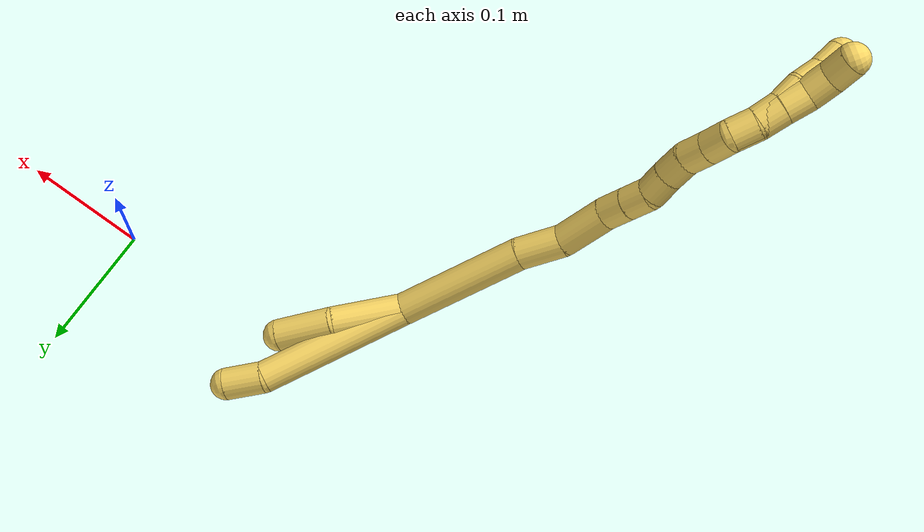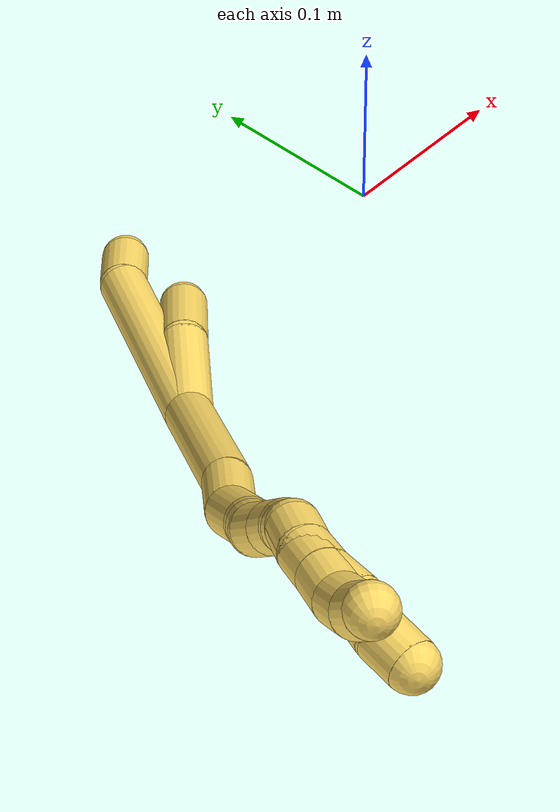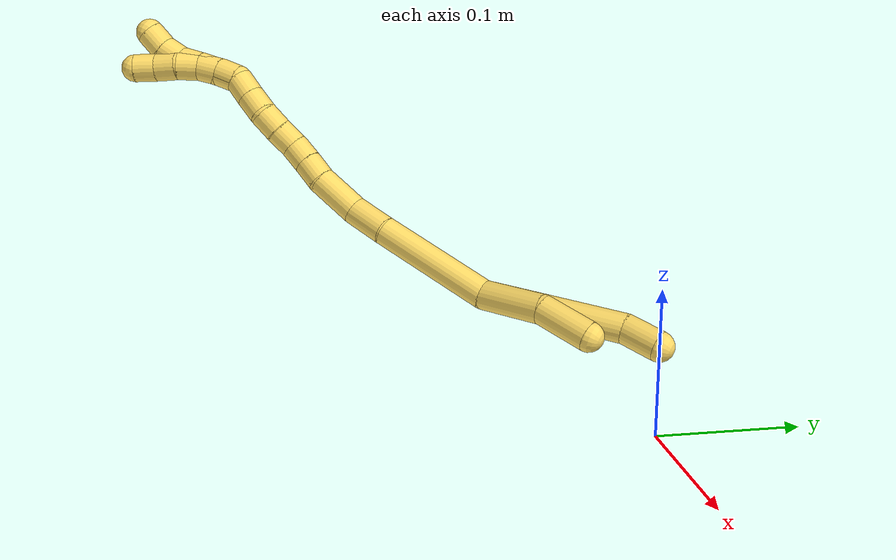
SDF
<sdf version="1.7">
 <world name="default">
  <model name="5">
   <static>0</static>
   <link name="5">
    <collision name="collision-cylinder-e_1_2_8">
     <pose>0.008209 -0.009722 -0.058133 2.97588 0.138385 1.39087</pose>
     <geometry><cylinder><radius>0.0125</radius><length>0.119018</length></cylinder></geometry>
     <surface>
      <friction><ode><mu>1.16</mu><mu2>1.16</mu2><slip1>0</slip1><slip2>0</slip2></ode></friction>
      <contact><ode><kp>1e+06</kp><kd>1</kd><max_vel>0</max_vel><min_depth>0.001</min_depth></ode></contact>
     </surface>
    </collision>
    <visual name="visual-cylinder-e_1_2_8">
     <pose>0.008209 -0.009722 -0.058133 2.97588 0.138385 1.39087</pose>
     <geometry><cylinder><radius>0.0125</radius><length>0.119018</length></cylinder></geometry>
     <material><ambient>1 0.858824 0.4 1</ambient></material>
    </visual>
    <collision name="collision-cylinder-e_2_8_6">
     <pose>0.013962 -0.019486 -0.13156 3.13894 -0.159186 -3.10832</pose>
     <geometry><cylinder><radius>0.0125</radius><length>0.030982</length></cylinder></geometry>
     <surface>
      <friction><ode><mu>1.16</mu><mu2>1.16</mu2><slip1>0</slip1><slip2>0</slip2></ode></friction>
      <contact><ode><kp>1e+06</kp><kd>1</kd><max_vel>0</max_vel><min_depth>0.001</min_depth></ode></contact>
     </surface>
    </collision>
    <visual name="visual-cylinder-e_2_8_6">
     <pose>0.013962 -0.019486 -0.13156 3.13894 -0.159186 -3.10832</pose>
     <geometry><cylinder><radius>0.0125</radius><length>0.030982</length></cylinder></geometry>
     <material><ambient>1 0.858824 0.4 1</ambient></material>
    </visual>
    <collision name="collision-cylinder-e_1_2_9">
     <pose>-0.003303 -0.006274 -0.026842 2.91197 -0.119266 -0.955454</pose>
     <geometry><cylinder><radius>0.0125</radius><length>0.055525</length></cylinder></geometry>
     <surface>
      <friction><ode><mu>1.16</mu><mu2>1.16</mu2><slip1>0</slip1><slip2>0</slip2></ode></friction>
      <contact><ode><kp>1e+06</kp><kd>1</kd><max_vel>0</max_vel><min_depth>0.001</min_depth></ode></contact>
     </surface>
    </collision>
    <visual name="visual-cylinder-e_1_2_9">
     <pose>-0.003303 -0.006274 -0.026842 2.91197 -0.119266 -0.955454</pose>
     <geometry><cylinder><radius>0.0125</radius><length>0.055525</length></cylinder></geometry>
     <material><ambient>1 0.858824 0.4 1</ambient></material>
    </visual>
    <collision name="collision-cylinder-e_2_9_5">
     <pose>-0.009376 -0.0115 -0.075723 -3.09404 -0.124885 2.41476</pose>
     <geometry><cylinder><radius>0.0125</radius><length>0.044475</length></cylinder></geometry>
     <surface>
      <friction><ode><mu>1.16</mu><mu2>1.16</mu2><slip1>0</slip1><slip2>0</slip2></ode></friction>
      <contact><ode><kp>1e+06</kp><kd>1</kd><max_vel>0</max_vel><min_depth>0.001</min_depth></ode></contact>
     </surface>
    </collision>
    <visual name="visual-cylinder-e_2_9_5">
     <pose>-0.009376 -0.0115 -0.075723 -3.09404 -0.124885 2.41476</pose>
     <geometry><cylinder><radius>0.0125</radius><length>0.044475</length></cylinder></geometry>
     <material><ambient>1 0.858824 0.4 1</ambient></material>
    </visual>
    <collision name="collision-cylinder-e_1_2_10">
     <pose>-0.003356 -0.008239 0.050673 0.161173 -0.065287 -0.005275</pose>
     <geometry><cylinder><radius>0.0125</radius><length>0.102895</length></cylinder></geometry>
     <surface>
      <friction><ode><mu>1.16</mu><mu2>1.16</mu2><slip1>0</slip1><slip2>0</slip2></ode></friction>
      <contact><ode><kp>1e+06</kp><kd>1</kd><max_vel>0</max_vel><min_depth>0.001</min_depth></ode></contact>
     </surface>
    </collision>
    <visual name="visual-cylinder-e_1_2_10">
     <pose>-0.003356 -0.008239 0.050673 0.161173 -0.065287 -0.005275</pose>
     <geometry><cylinder><radius>0.0125</radius><length>0.102895</length></cylinder></geometry>
     <material><ambient>1 0.858824 0.4 1</ambient></material>
    </visual>
    <collision name="collision-cylinder-e_2_10_11">
     <pose>-0.005289 -0.018675 0.118853 0.124876 0.080503 0.005036</pose>
     <geometry><cylinder><radius>0.0125</radius><length>0.035405</length></cylinder></geometry>
     <surface>
      <friction><ode><mu>1.16</mu><mu2>1.16</mu2><slip1>0</slip1><slip2>0</slip2></ode></friction>
      <contact><ode><kp>1e+06</kp><kd>1</kd><max_vel>0</max_vel><min_depth>0.001</min_depth></ode></contact>
     </surface>
    </collision>
    <visual name="visual-cylinder-e_2_10_11">
     <pose>-0.005289 -0.018675 0.118853 0.124876 0.080503 0.005036</pose>
     <geometry><cylinder><radius>0.0125</radius><length>0.035405</length></cylinder></geometry>
     <material><ambient>1 0.858824 0.4 1</ambient></material>
    </visual>
    <collision name="collision-cylinder-e_3_11_12">
     <pose>-0.006549 -0.028 0.155203 0.361653 -0.132433 -0.024246</pose>
     <geometry><cylinder><radius>0.0125</radius><length>0.040647</length></cylinder></geometry>
     <surface>
      <friction><ode><mu>1.16</mu><mu2>1.16</mu2><slip1>0</slip1><slip2>0</slip2></ode></friction>
      <contact><ode><kp>1e+06</kp><kd>1</kd><max_vel>0</max_vel><min_depth>0.001</min_depth></ode></contact>
     </surface>
    </collision>
    <visual name="visual-cylinder-e_3_11_12">
     <pose>-0.006549 -0.028 0.155203 0.361653 -0.132433 -0.024246</pose>
     <geometry><cylinder><radius>0.0125</radius><length>0.040647</length></cylinder></geometry>
     <material><ambient>1 0.858824 0.4 1</ambient></material>
    </visual>
    <collision name="collision-cylinder-e_4_12_13">
     <pose>-0.008989 -0.039872 0.183285 0.474305 0.023474 0.005674</pose>
     <geometry><cylinder><radius>0.0125</radius><length>0.020777</length></cylinder></geometry>
     <surface>
      <friction><ode><mu>1.16</mu><mu2>1.16</mu2><slip1>0</slip1><slip2>0</slip2></ode></friction>
      <contact><ode><kp>1e+06</kp><kd>1</kd><max_vel>0</max_vel><min_depth>0.001</min_depth></ode></contact>
     </surface>
    </collision>
    <visual name="visual-cylinder-e_4_12_13">
     <pose>-0.008989 -0.039872 0.183285 0.474305 0.023474 0.005674</pose>
     <geometry><cylinder><radius>0.0125</radius><length>0.020777</length></cylinder></geometry>
     <material><ambient>1 0.858824 0.4 1</ambient></material>
    </visual>
    <collision name="collision-cylinder-e_5_13_14">
     <pose>-0.008531 -0.048976 0.201637 0.446353 0.021261 0.004826</pose>
     <geometry><cylinder><radius>0.0125</radius><length>0.02021</length></cylinder></geometry>
     <surface>
      <friction><ode><mu>1.16</mu><mu2>1.16</mu2><slip1>0</slip1><slip2>0</slip2></ode></friction>
      <contact><ode><kp>1e+06</kp><kd>1</kd><max_vel>0</max_vel><min_depth>0.001</min_depth></ode></contact>
     </surface>
    </collision>
    <visual name="visual-cylinder-e_5_13_14">
     <pose>-0.008531 -0.048976 0.201637 0.446353 0.021261 0.004826</pose>
     <geometry><cylinder><radius>0.0125</radius><length>0.02021</length></cylinder></geometry>
     <material><ambient>1 0.858824 0.4 1</ambient></material>
    </visual>
    <collision name="collision-cylinder-e_6_14_15">
     <pose>-0.011453 -0.057972 0.21905 0.50925 -0.318823 -0.083643</pose>
     <geometry><cylinder><radius>0.0125</radius><length>0.02002</length></cylinder></geometry>
     <surface>
      <friction><ode><mu>1.16</mu><mu2>1.16</mu2><slip1>0</slip1><slip2>0</slip2></ode></friction>
      <contact><ode><kp>1e+06</kp><kd>1</kd><max_vel>0</max_vel><min_depth>0.001</min_depth></ode></contact>
     </surface>
    </collision>
    <visual name="visual-cylinder-e_6_14_15">
     <pose>-0.011453 -0.057972 0.21905 0.50925 -0.318823 -0.083643</pose>
     <geometry><cylinder><radius>0.0125</radius><length>0.02002</length></cylinder></geometry>
     <material><ambient>1 0.858824 0.4 1</ambient></material>
    </visual>
    <collision name="collision-cylinder-e_7_15_16">
     <pose>-0.017028 -0.067526 0.235734 0.530619 -0.245627 -0.067053</pose>
     <geometry><cylinder><radius>0.0125</radius><length>0.020044</length></cylinder></geometry>
     <surface>
      <friction><ode><mu>1.16</mu><mu2>1.16</mu2><slip1>0</slip1><slip2>0</slip2></ode></friction>
      <contact><ode><kp>1e+06</kp><kd>1</kd><max_vel>0</max_vel><min_depth>0.001</min_depth></ode></contact>
     </surface>
    </collision>
    <visual name="visual-cylinder-e_7_15_16">
     <pose>-0.017028 -0.067526 0.235734 0.530619 -0.245627 -0.067053</pose>
     <geometry><cylinder><radius>0.0125</radius><length>0.020044</length></cylinder></geometry>
     <material><ambient>1 0.858824 0.4 1</ambient></material>
    </visual>
    <collision name="collision-cylinder-e_8_16_17">
     <pose>-0.019285 -0.077175 0.252928 0.492725 0.017979 0.004521</pose>
     <geometry><cylinder><radius>0.0125</radius><length>0.020001</length></cylinder></geometry>
     <surface>
      <friction><ode><mu>1.16</mu><mu2>1.16</mu2><slip1>0</slip1><slip2>0</slip2></ode></friction>
      <contact><ode><kp>1e+06</kp><kd>1</kd><max_vel>0</max_vel><min_depth>0.001</min_depth></ode></contact>
     </surface>
    </collision>
    <visual name="visual-cylinder-e_8_16_17">
     <pose>-0.019285 -0.077175 0.252928 0.492725 0.017979 0.004521</pose>
     <geometry><cylinder><radius>0.0125</radius><length>0.020001</length></cylinder></geometry>
     <material><ambient>1 0.858824 0.4 1</ambient></material>
    </visual>
    <collision name="collision-cylinder-e_9_17_1">
     <pose>-0.019198 -0.087065 0.270302 0.542215 -0.009286 -0.002581</pose>
     <geometry><cylinder><radius>0.0125</radius><length>0.02</length></cylinder></geometry>
     <surface>
      <friction><ode><mu>1.16</mu><mu2>1.16</mu2><slip1>0</slip1><slip2>0</slip2></ode></friction>
      <contact><ode><kp>1e+06</kp><kd>1</kd><max_vel>0</max_vel><min_depth>0.001</min_depth></ode></contact>
     </surface>
    </collision>
    <visual name="visual-cylinder-e_9_17_1">
     <pose>-0.019198 -0.087065 0.270302 0.542215 -0.009286 -0.002581</pose>
     <geometry><cylinder><radius>0.0125</radius><length>0.02</length></cylinder></geometry>
     <material><ambient>1 0.858824 0.4 1</ambient></material>
    </visual>
    <collision name="collision-cylinder-e_1_1_18">
     <pose>-0.020175 -0.092286 0.288828 0.006093 -0.088494 -0.00027</pose>
     <geometry><cylinder><radius>0.0125</radius><length>0.02</length></cylinder></geometry>
     <surface>
      <friction><ode><mu>1.16</mu><mu2>1.16</mu2><slip1>0</slip1><slip2>0</slip2></ode></friction>
      <contact><ode><kp>1e+06</kp><kd>1</kd><max_vel>0</max_vel><min_depth>0.001</min_depth></ode></contact>
     </surface>
    </collision>
    <visual name="visual-cylinder-e_1_1_18">
     <pose>-0.020175 -0.092286 0.288828 0.006093 -0.088494 -0.00027</pose>
     <geometry><cylinder><radius>0.0125</radius><length>0.02</length></cylinder></geometry>
     <material><ambient>1 0.858824 0.4 1</ambient></material>
    </visual>
    <collision name="collision-cylinder-e_2_18_19">
     <pose>-0.02371 -0.091438 0.308388 -0.094296 -0.268341 0.012737</pose>
     <geometry><cylinder><radius>0.0125</radius><length>0.02</length></cylinder></geometry>
     <surface>
      <friction><ode><mu>1.16</mu><mu2>1.16</mu2><slip1>0</slip1><slip2>0</slip2></ode></friction>
      <contact><ode><kp>1e+06</kp><kd>1</kd><max_vel>0</max_vel><min_depth>0.001</min_depth></ode></contact>
     </surface>
    </collision>
    <visual name="visual-cylinder-e_2_18_19">
     <pose>-0.02371 -0.091438 0.308388 -0.094296 -0.268341 0.012737</pose>
     <geometry><cylinder><radius>0.0125</radius><length>0.02</length></cylinder></geometry>
     <material><ambient>1 0.858824 0.4 1</ambient></material>
    </visual>
    <collision name="collision-cylinder-e_3_19_20">
     <pose>-0.031083 -0.088116 0.326466 -0.277477 -0.491748 0.070055</pose>
     <geometry><cylinder><radius>0.0125</radius><length>0.02</length></cylinder></geometry>
     <surface>
      <friction><ode><mu>1.16</mu><mu2>1.16</mu2><slip1>0</slip1><slip2>0</slip2></ode></friction>
      <contact><ode><kp>1e+06</kp><kd>1</kd><max_vel>0</max_vel><min_depth>0.001</min_depth></ode></contact>
     </surface>
    </collision>
    <visual name="visual-cylinder-e_3_19_20">
     <pose>-0.031083 -0.088116 0.326466 -0.277477 -0.491748 0.070055</pose>
     <geometry><cylinder><radius>0.0125</radius><length>0.02</length></cylinder></geometry>
     <material><ambient>1 0.858824 0.4 1</ambient></material>
    </visual>
    <collision name="collision-cylinder-e_4_20_21">
     <pose>-0.038887 -0.081992 0.343704 -0.40046 -0.31329 0.064085</pose>
     <geometry><cylinder><radius>0.0125</radius><length>0.02</length></cylinder></geometry>
     <surface>
      <friction><ode><mu>1.16</mu><mu2>1.16</mu2><slip1>0</slip1><slip2>0</slip2></ode></friction>
      <contact><ode><kp>1e+06</kp><kd>1</kd><max_vel>0</max_vel><min_depth>0.001</min_depth></ode></contact>
     </surface>
    </collision>
    <visual name="visual-cylinder-e_4_20_21">
     <pose>-0.038887 -0.081992 0.343704 -0.40046 -0.31329 0.064085</pose>
     <geometry><cylinder><radius>0.0125</radius><length>0.02</length></cylinder></geometry>
     <material><ambient>1 0.858824 0.4 1</ambient></material>
    </visual>
    <collision name="collision-cylinder-e_5_21_4">
     <pose>-0.046475 -0.075126 0.360815 -0.361507 -0.467443 0.08696</pose>
     <geometry><cylinder><radius>0.0125</radius><length>0.02</length></cylinder></geometry>
     <surface>
      <friction><ode><mu>1.16</mu><mu2>1.16</mu2><slip1>0</slip1><slip2>0</slip2></ode></friction>
      <contact><ode><kp>1e+06</kp><kd>1</kd><max_vel>0</max_vel><min_depth>0.001</min_depth></ode></contact>
     </surface>
    </collision>
    <visual name="visual-cylinder-e_5_21_4">
     <pose>-0.046475 -0.075126 0.360815 -0.361507 -0.467443 0.08696</pose>
     <geometry><cylinder><radius>0.0125</radius><length>0.02</length></cylinder></geometry>
     <material><ambient>1 0.858824 0.4 1</ambient></material>
    </visual>
    <collision name="collision-cylinder-e_1_1_22">
     <pose>-0.020127 -0.092035 0.288831 -0.019108 -0.083697 0.0008</pose>
     <geometry><cylinder><radius>0.0125</radius><length>0.02</length></cylinder></geometry>
     <surface>
      <friction><ode><mu>1.16</mu><mu2>1.16</mu2><slip1>0</slip1><slip2>0</slip2></ode></friction>
      <contact><ode><kp>1e+06</kp><kd>1</kd><max_vel>0</max_vel><min_depth>0.001</min_depth></ode></contact>
     </surface>
    </collision>
    <visual name="visual-cylinder-e_1_1_22">
     <pose>-0.020127 -0.092035 0.288831 -0.019108 -0.083697 0.0008</pose>
     <geometry><cylinder><radius>0.0125</radius><length>0.02</length></cylinder></geometry>
     <material><ambient>1 0.858824 0.4 1</ambient></material>
    </visual>
    <collision name="collision-cylinder-e_2_22_23">
     <pose>-0.023072 -0.091584 0.308566 -0.02665 -0.21247 0.002842</pose>
     <geometry><cylinder><radius>0.0125</radius><length>0.02</length></cylinder></geometry>
     <surface>
      <friction><ode><mu>1.16</mu><mu2>1.16</mu2><slip1>0</slip1><slip2>0</slip2></ode></friction>
      <contact><ode><kp>1e+06</kp><kd>1</kd><max_vel>0</max_vel><min_depth>0.001</min_depth></ode></contact>
     </surface>
    </collision>
    <visual name="visual-cylinder-e_2_22_23">
     <pose>-0.023072 -0.091584 0.308566 -0.02665 -0.21247 0.002842</pose>
     <geometry><cylinder><radius>0.0125</radius><length>0.02</length></cylinder></geometry>
     <material><ambient>1 0.858824 0.4 1</ambient></material>
    </visual>
    <collision name="collision-cylinder-e_3_23_24">
     <pose>-0.027003 -0.090625 0.328145 -0.07109 -0.183242 0.006534</pose>
     <geometry><cylinder><radius>0.0125</radius><length>0.02</length></cylinder></geometry>
     <surface>
      <friction><ode><mu>1.16</mu><mu2>1.16</mu2><slip1>0</slip1><slip2>0</slip2></ode></friction>
      <contact><ode><kp>1e+06</kp><kd>1</kd><max_vel>0</max_vel><min_depth>0.001</min_depth></ode></contact>
     </surface>
    </collision>
    <visual name="visual-cylinder-e_3_23_24">
     <pose>-0.027003 -0.090625 0.328145 -0.07109 -0.183242 0.006534</pose>
     <geometry><cylinder><radius>0.0125</radius><length>0.02</length></cylinder></geometry>
     <material><ambient>1 0.858824 0.4 1</ambient></material>
    </visual>
    <collision name="collision-cylinder-e_4_24_25">
     <pose>-0.031054 -0.092296 0.347409 0.245578 -0.224829 -0.027862</pose>
     <geometry><cylinder><radius>0.0125</radius><length>0.02</length></cylinder></geometry>
     <surface>
      <friction><ode><mu>1.16</mu><mu2>1.16</mu2><slip1>0</slip1><slip2>0</slip2></ode></friction>
      <contact><ode><kp>1e+06</kp><kd>1</kd><max_vel>0</max_vel><min_depth>0.001</min_depth></ode></contact>
     </surface>
    </collision>
    <visual name="visual-cylinder-e_4_24_25">
     <pose>-0.031054 -0.092296 0.347409 0.245578 -0.224829 -0.027862</pose>
     <geometry><cylinder><radius>0.0125</radius><length>0.02</length></cylinder></geometry>
     <material><ambient>1 0.858824 0.4 1</ambient></material>
    </visual>
    <collision name="collision-cylinder-e_5_25_3">
     <pose>-0.035205 -0.099642 0.365323 0.531776 -0.193351 -0.052809</pose>
     <geometry><cylinder><radius>0.0125</radius><length>0.02</length></cylinder></geometry>
     <surface>
      <friction><ode><mu>1.16</mu><mu2>1.16</mu2><slip1>0</slip1><slip2>0</slip2></ode></friction>
      <contact><ode><kp>1e+06</kp><kd>1</kd><max_vel>0</max_vel><min_depth>0.001</min_depth></ode></contact>
     </surface>
    </collision>
    <visual name="visual-cylinder-e_5_25_3">
     <pose>-0.035205 -0.099642 0.365323 0.531776 -0.193351 -0.052809</pose>
     <geometry><cylinder><radius>0.0125</radius><length>0.02</length></cylinder></geometry>
     <material><ambient>1 0.858824 0.4 1</ambient></material>
    </visual>
    <collision name="collision-sphere-3">
     <pose>-0.037127 -0.104619 0.373782 0 -0 0</pose>
     <geometry><sphere><radius>0.0125</radius></sphere></geometry>
     <surface>
      <friction><ode><mu>1.16</mu><mu2>1.16</mu2><slip1>0</slip1><slip2>0</slip2></ode></friction>
      <contact><ode><kp>1e+06</kp><kd>1</kd><max_vel>0</max_vel><min_depth>0.001</min_depth></ode></contact>
     </surface>
    </collision>
    <visual name="visual-sphere-3">
     <pose>-0.037127 -0.104619 0.373782 0 -0 0</pose>
     <geometry><sphere><radius>0.0125</radius></sphere></geometry>
     <material><ambient>1 0.858824 0.4 1</ambient></material>
    </visual>
    <collision name="collision-sphere-25">
     <pose>-0.033284 -0.094666 0.356865 0 -0 0</pose>
     <geometry><sphere><radius>0.0125</radius></sphere></geometry>
     <surface>
      <friction><ode><mu>1.16</mu><mu2>1.16</mu2><slip1>0</slip1><slip2>0</slip2></ode></friction>
      <contact><ode><kp>1e+06</kp><kd>1</kd><max_vel>0</max_vel><min_depth>0.001</min_depth></ode></contact>
     </surface>
    </collision>
    <visual name="visual-sphere-25">
     <pose>-0.033284 -0.094666 0.356865 0 -0 0</pose>
     <geometry><sphere><radius>0.0125</radius></sphere></geometry>
     <material><ambient>1 0.858824 0.4 1</ambient></material>
    </visual>
    <collision name="collision-sphere-24">
     <pose>-0.028825 -0.089926 0.337953 0 -0 0</pose>
     <geometry><sphere><radius>0.0125</radius></sphere></geometry>
     <surface>
      <friction><ode><mu>1.16</mu><mu2>1.16</mu2><slip1>0</slip1><slip2>0</slip2></ode></friction>
      <contact><ode><kp>1e+06</kp><kd>1</kd><max_vel>0</max_vel><min_depth>0.001</min_depth></ode></contact>
     </surface>
    </collision>
    <visual name="visual-sphere-24">
     <pose>-0.028825 -0.089926 0.337953 0 -0 0</pose>
     <geometry><sphere><radius>0.0125</radius></sphere></geometry>
     <material><ambient>1 0.858824 0.4 1</ambient></material>
    </visual>
    <collision name="collision-sphere-23">
     <pose>-0.025181 -0.091323 0.318337 0 -0 0</pose>
     <geometry><sphere><radius>0.0125</radius></sphere></geometry>
     <surface>
      <friction><ode><mu>1.16</mu><mu2>1.16</mu2><slip1>0</slip1><slip2>0</slip2></ode></friction>
      <contact><ode><kp>1e+06</kp><kd>1</kd><max_vel>0</max_vel><min_depth>0.001</min_depth></ode></contact>
     </surface>
    </collision>
    <visual name="visual-sphere-23">
     <pose>-0.025181 -0.091323 0.318337 0 -0 0</pose>
     <geometry><sphere><radius>0.0125</radius></sphere></geometry>
     <material><ambient>1 0.858824 0.4 1</ambient></material>
    </visual>
    <collision name="collision-sphere-22">
     <pose>-0.020963 -0.091844 0.298794 0 -0 0</pose>
     <geometry><sphere><radius>0.0125</radius></sphere></geometry>
     <surface>
      <friction><ode><mu>1.16</mu><mu2>1.16</mu2><slip1>0</slip1><slip2>0</slip2></ode></friction>
      <contact><ode><kp>1e+06</kp><kd>1</kd><max_vel>0</max_vel><min_depth>0.001</min_depth></ode></contact>
     </surface>
    </collision>
    <visual name="visual-sphere-22">
     <pose>-0.020963 -0.091844 0.298794 0 -0 0</pose>
     <geometry><sphere><radius>0.0125</radius></sphere></geometry>
     <material><ambient>1 0.858824 0.4 1</ambient></material>
    </visual>
    <collision name="collision-sphere-4">
     <pose>-0.050981 -0.071969 0.369165 0 -0 0</pose>
     <geometry><sphere><radius>0.0125</radius></sphere></geometry>
     <surface>
      <friction><ode><mu>1.16</mu><mu2>1.16</mu2><slip1>0</slip1><slip2>0</slip2></ode></friction>
      <contact><ode><kp>1e+06</kp><kd>1</kd><max_vel>0</max_vel><min_depth>0.001</min_depth></ode></contact>
     </surface>
    </collision>
    <visual name="visual-sphere-4">
     <pose>-0.050981 -0.071969 0.369165 0 -0 0</pose>
     <geometry><sphere><radius>0.0125</radius></sphere></geometry>
     <material><ambient>1 0.858824 0.4 1</ambient></material>
    </visual>
    <collision name="collision-sphere-21">
     <pose>-0.041969 -0.078284 0.352465 0 -0 0</pose>
     <geometry><sphere><radius>0.0125</radius></sphere></geometry>
     <surface>
      <friction><ode><mu>1.16</mu><mu2>1.16</mu2><slip1>0</slip1><slip2>0</slip2></ode></friction>
      <contact><ode><kp>1e+06</kp><kd>1</kd><max_vel>0</max_vel><min_depth>0.001</min_depth></ode></contact>
     </surface>
    </collision>
    <visual name="visual-sphere-21">
     <pose>-0.041969 -0.078284 0.352465 0 -0 0</pose>
     <geometry><sphere><radius>0.0125</radius></sphere></geometry>
     <material><ambient>1 0.858824 0.4 1</ambient></material>
    </visual>
    <collision name="collision-sphere-20">
     <pose>-0.035805 -0.085701 0.334944 0 -0 0</pose>
     <geometry><sphere><radius>0.0125</radius></sphere></geometry>
     <surface>
      <friction><ode><mu>1.16</mu><mu2>1.16</mu2><slip1>0</slip1><slip2>0</slip2></ode></friction>
      <contact><ode><kp>1e+06</kp><kd>1</kd><max_vel>0</max_vel><min_depth>0.001</min_depth></ode></contact>
     </surface>
    </collision>
    <visual name="visual-sphere-20">
     <pose>-0.035805 -0.085701 0.334944 0 -0 0</pose>
     <geometry><sphere><radius>0.0125</radius></sphere></geometry>
     <material><ambient>1 0.858824 0.4 1</ambient></material>
    </visual>
    <collision name="collision-sphere-10">
     <pose>-0.006713 -0.016477 0.101345 0 -0 0</pose>
     <geometry><sphere><radius>0.0125</radius></sphere></geometry>
     <surface>
      <friction><ode><mu>1.16</mu><mu2>1.16</mu2><slip1>0</slip1><slip2>0</slip2></ode></friction>
      <contact><ode><kp>1e+06</kp><kd>1</kd><max_vel>0</max_vel><min_depth>0.001</min_depth></ode></contact>
     </surface>
    </collision>
    <visual name="visual-sphere-10">
     <pose>-0.006713 -0.016477 0.101345 0 -0 0</pose>
     <geometry><sphere><radius>0.0125</radius></sphere></geometry>
     <material><ambient>1 0.858824 0.4 1</ambient></material>
    </visual>
    <collision name="collision-sphere-5">
     <pose>-0.012146 -0.010451 -0.097762 0 -0 0</pose>
     <geometry><sphere><radius>0.0125</radius></sphere></geometry>
     <surface>
      <friction><ode><mu>1.16</mu><mu2>1.16</mu2><slip1>0</slip1><slip2>0</slip2></ode></friction>
      <contact><ode><kp>1e+06</kp><kd>1</kd><max_vel>0</max_vel><min_depth>0.001</min_depth></ode></contact>
     </surface>
    </collision>
    <visual name="visual-sphere-5">
     <pose>-0.012146 -0.010451 -0.097762 0 -0 0</pose>
     <geometry><sphere><radius>0.0125</radius></sphere></geometry>
     <material><ambient>1 0.858824 0.4 1</ambient></material>
    </visual>
    <collision name="collision-sphere-6">
     <pose>0.011507 -0.019526 -0.146856 0 -0 0</pose>
     <geometry><sphere><radius>0.0125</radius></sphere></geometry>
     <surface>
      <friction><ode><mu>1.16</mu><mu2>1.16</mu2><slip1>0</slip1><slip2>0</slip2></ode></friction>
      <contact><ode><kp>1e+06</kp><kd>1</kd><max_vel>0</max_vel><min_depth>0.001</min_depth></ode></contact>
     </surface>
    </collision>
    <visual name="visual-sphere-6">
     <pose>0.011507 -0.019526 -0.146856 0 -0 0</pose>
     <geometry><sphere><radius>0.0125</radius></sphere></geometry>
     <material><ambient>1 0.858824 0.4 1</ambient></material>
    </visual>
    <collision name="collision-sphere-9">
     <pose>-0.006607 -0.012548 -0.053683 0 -0 0</pose>
     <geometry><sphere><radius>0.0125</radius></sphere></geometry>
     <surface>
      <friction><ode><mu>1.16</mu><mu2>1.16</mu2><slip1>0</slip1><slip2>0</slip2></ode></friction>
      <contact><ode><kp>1e+06</kp><kd>1</kd><max_vel>0</max_vel><min_depth>0.001</min_depth></ode></contact>
     </surface>
    </collision>
    <visual name="visual-sphere-9">
     <pose>-0.006607 -0.012548 -0.053683 0 -0 0</pose>
     <geometry><sphere><radius>0.0125</radius></sphere></geometry>
     <material><ambient>1 0.858824 0.4 1</ambient></material>
    </visual>
    <collision name="collision-sphere-2">
     <geometry><sphere><radius>0.0125</radius></sphere></geometry>
     <surface>
      <friction><ode><mu>1.16</mu><mu2>1.16</mu2><slip1>0</slip1><slip2>0</slip2></ode></friction>
      <contact><ode><kp>1e+06</kp><kd>1</kd><max_vel>0</max_vel><min_depth>0.001</min_depth></ode></contact>
     </surface>
    </collision>
    <visual name="visual-sphere-2">
     <geometry><sphere><radius>0.0125</radius></sphere></geometry>
     <material><ambient>1 0.858824 0.4 1</ambient></material>
    </visual>
    <collision name="collision-sphere-19">
     <pose>-0.026361 -0.090531 0.317988 0 -0 0</pose>
     <geometry><sphere><radius>0.0125</radius></sphere></geometry>
     <surface>
      <friction><ode><mu>1.16</mu><mu2>1.16</mu2><slip1>0</slip1><slip2>0</slip2></ode></friction>
      <contact><ode><kp>1e+06</kp><kd>1</kd><max_vel>0</max_vel><min_depth>0.001</min_depth></ode></contact>
     </surface>
    </collision>
    <visual name="visual-sphere-19">
     <pose>-0.026361 -0.090531 0.317988 0 -0 0</pose>
     <geometry><sphere><radius>0.0125</radius></sphere></geometry>
     <material><ambient>1 0.858824 0.4 1</ambient></material>
    </visual>
    <collision name="collision-sphere-8">
     <pose>0.016418 -0.019445 -0.116265 0 -0 0</pose>
     <geometry><sphere><radius>0.0125</radius></sphere></geometry>
     <surface>
      <friction><ode><mu>1.16</mu><mu2>1.16</mu2><slip1>0</slip1><slip2>0</slip2></ode></friction>
      <contact><ode><kp>1e+06</kp><kd>1</kd><max_vel>0</max_vel><min_depth>0.001</min_depth></ode></contact>
     </surface>
    </collision>
    <visual name="visual-sphere-8">
     <pose>0.016418 -0.019445 -0.116265 0 -0 0</pose>
     <geometry><sphere><radius>0.0125</radius></sphere></geometry>
     <material><ambient>1 0.858824 0.4 1</ambient></material>
    </visual>
    <collision name="collision-sphere-11">
     <pose>-0.003866 -0.020872 0.136361 0 -0 0</pose>
     <geometry><sphere><radius>0.0125</radius></sphere></geometry>
     <surface>
      <friction><ode><mu>1.16</mu><mu2>1.16</mu2><slip1>0</slip1><slip2>0</slip2></ode></friction>
      <contact><ode><kp>1e+06</kp><kd>1</kd><max_vel>0</max_vel><min_depth>0.001</min_depth></ode></contact>
     </surface>
    </collision>
    <visual name="visual-sphere-11">
     <pose>-0.003866 -0.020872 0.136361 0 -0 0</pose>
     <geometry><sphere><radius>0.0125</radius></sphere></geometry>
     <material><ambient>1 0.858824 0.4 1</ambient></material>
    </visual>
    <collision name="collision-sphere-12">
     <pose>-0.009233 -0.035128 0.174046 0 -0 0</pose>
     <geometry><sphere><radius>0.0125</radius></sphere></geometry>
     <surface>
      <friction><ode><mu>1.16</mu><mu2>1.16</mu2><slip1>0</slip1><slip2>0</slip2></ode></friction>
      <contact><ode><kp>1e+06</kp><kd>1</kd><max_vel>0</max_vel><min_depth>0.001</min_depth></ode></contact>
     </surface>
    </collision>
    <visual name="visual-sphere-12">
     <pose>-0.009233 -0.035128 0.174046 0 -0 0</pose>
     <geometry><sphere><radius>0.0125</radius></sphere></geometry>
     <material><ambient>1 0.858824 0.4 1</ambient></material>
    </visual>
    <collision name="collision-sphere-13">
     <pose>-0.008745 -0.044615 0.192524 0 -0 0</pose>
     <geometry><sphere><radius>0.0125</radius></sphere></geometry>
     <surface>
      <friction><ode><mu>1.16</mu><mu2>1.16</mu2><slip1>0</slip1><slip2>0</slip2></ode></friction>
      <contact><ode><kp>1e+06</kp><kd>1</kd><max_vel>0</max_vel><min_depth>0.001</min_depth></ode></contact>
     </surface>
    </collision>
    <visual name="visual-sphere-13">
     <pose>-0.008745 -0.044615 0.192524 0 -0 0</pose>
     <geometry><sphere><radius>0.0125</radius></sphere></geometry>
     <material><ambient>1 0.858824 0.4 1</ambient></material>
    </visual>
    <collision name="collision-sphere-14">
     <pose>-0.008316 -0.053338 0.21075 0 -0 0</pose>
     <geometry><sphere><radius>0.0125</radius></sphere></geometry>
     <surface>
      <friction><ode><mu>1.16</mu><mu2>1.16</mu2><slip1>0</slip1><slip2>0</slip2></ode></friction>
      <contact><ode><kp>1e+06</kp><kd>1</kd><max_vel>0</max_vel><min_depth>0.001</min_depth></ode></contact>
     </surface>
    </collision>
    <visual name="visual-sphere-14">
     <pose>-0.008316 -0.053338 0.21075 0 -0 0</pose>
     <geometry><sphere><radius>0.0125</radius></sphere></geometry>
     <material><ambient>1 0.858824 0.4 1</ambient></material>
    </visual>
    <collision name="collision-sphere-15">
     <pose>-0.014591 -0.062606 0.227349 0 -0 0</pose>
     <geometry><sphere><radius>0.0125</radius></sphere></geometry>
     <surface>
      <friction><ode><mu>1.16</mu><mu2>1.16</mu2><slip1>0</slip1><slip2>0</slip2></ode></friction>
      <contact><ode><kp>1e+06</kp><kd>1</kd><max_vel>0</max_vel><min_depth>0.001</min_depth></ode></contact>
     </surface>
    </collision>
    <visual name="visual-sphere-15">
     <pose>-0.014591 -0.062606 0.227349 0 -0 0</pose>
     <geometry><sphere><radius>0.0125</radius></sphere></geometry>
     <material><ambient>1 0.858824 0.4 1</ambient></material>
    </visual>
    <collision name="collision-sphere-16">
     <pose>-0.019465 -0.072445 0.244118 0 -0 0</pose>
     <geometry><sphere><radius>0.0125</radius></sphere></geometry>
     <surface>
      <friction><ode><mu>1.16</mu><mu2>1.16</mu2><slip1>0</slip1><slip2>0</slip2></ode></friction>
      <contact><ode><kp>1e+06</kp><kd>1</kd><max_vel>0</max_vel><min_depth>0.001</min_depth></ode></contact>
     </surface>
    </collision>
    <visual name="visual-sphere-16">
     <pose>-0.019465 -0.072445 0.244118 0 -0 0</pose>
     <geometry><sphere><radius>0.0125</radius></sphere></geometry>
     <material><ambient>1 0.858824 0.4 1</ambient></material>
    </visual>
    <collision name="collision-sphere-17">
     <pose>-0.019105 -0.081905 0.261737 0 -0 0</pose>
     <geometry><sphere><radius>0.0125</radius></sphere></geometry>
     <surface>
      <friction><ode><mu>1.16</mu><mu2>1.16</mu2><slip1>0</slip1><slip2>0</slip2></ode></friction>
      <contact><ode><kp>1e+06</kp><kd>1</kd><max_vel>0</max_vel><min_depth>0.001</min_depth></ode></contact>
     </surface>
    </collision>
    <visual name="visual-sphere-17">
     <pose>-0.019105 -0.081905 0.261737 0 -0 0</pose>
     <geometry><sphere><radius>0.0125</radius></sphere></geometry>
     <material><ambient>1 0.858824 0.4 1</ambient></material>
    </visual>
    <collision name="collision-sphere-1">
     <pose>-0.019291 -0.092225 0.278868 0 -0 0</pose>
     <geometry><sphere><radius>0.0125</radius></sphere></geometry>
     <surface>
      <friction><ode><mu>1.16</mu><mu2>1.16</mu2><slip1>0</slip1><slip2>0</slip2></ode></friction>
      <contact><ode><kp>1e+06</kp><kd>1</kd><max_vel>0</max_vel><min_depth>0.001</min_depth></ode></contact>
     </surface>
    </collision>
    <visual name="visual-sphere-1">
     <pose>-0.019291 -0.092225 0.278868 0 -0 0</pose>
     <geometry><sphere><radius>0.0125</radius></sphere></geometry>
     <material><ambient>1 0.858824 0.4 1</ambient></material>
    </visual>
    <collision name="collision-sphere-18">
     <pose>-0.021059 -0.092346 0.298789 0 -0 0</pose>
     <geometry><sphere><radius>0.0125</radius></sphere></geometry>
     <surface>
      <friction><ode><mu>1.16</mu><mu2>1.16</mu2><slip1>0</slip1><slip2>0</slip2></ode></friction>
      <contact><ode><kp>1e+06</kp><kd>1</kd><max_vel>0</max_vel><min_depth>0.001</min_depth></ode></contact>
     </surface>
    </collision>
    <visual name="visual-sphere-18">
     <pose>-0.021059 -0.092346 0.298789 0 -0 0</pose>
     <geometry><sphere><radius>0.0125</radius></sphere></geometry>
     <material><ambient>1 0.858824 0.4 1</ambient></material>
    </visual>
    <inertial>
     <pose>-0.010167 -0.04105 0.123554 0 -0 0</pose>
     <mass>0.75</mass>
     <inertia>
      <ixx>0.000282</ixx>
      <ixy>0</ixy>
      <ixz>0</ixz>
      <iyy>0.000231</iyy>
      <iyz>0</iyz>
      <izz>6.1e-05</izz>
     </inertia>
    </inertial>
   </link>
   <pose>-0.213791 -0.070674 0.034717 -1.28701 0.082625 2.50084</pose>
  </model>
 </world>
</sdf>
